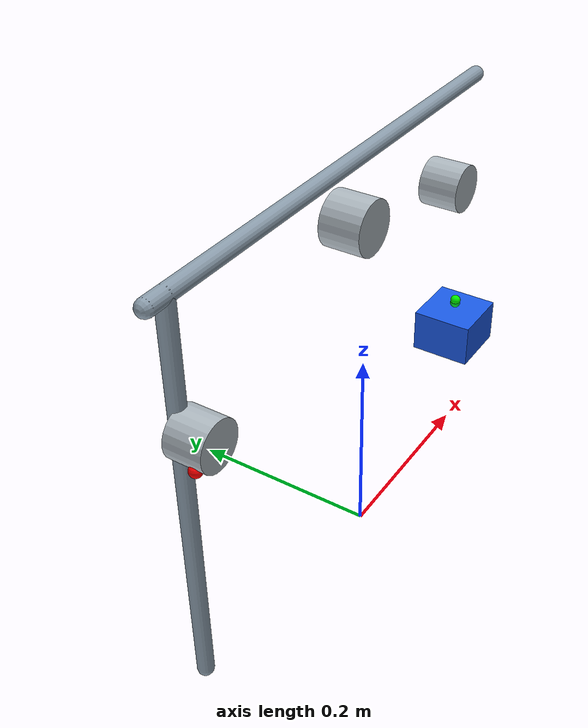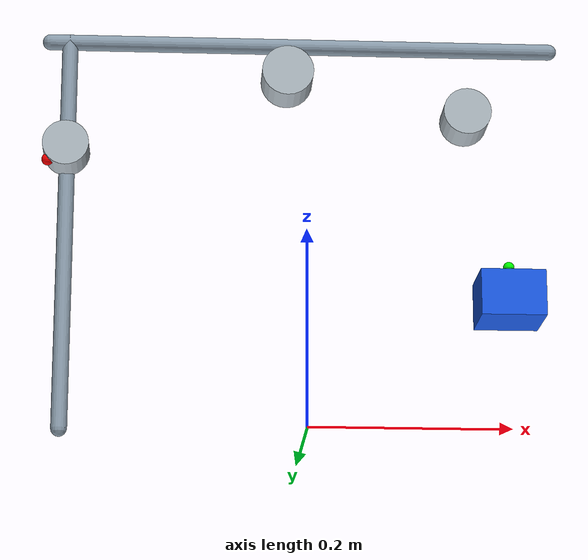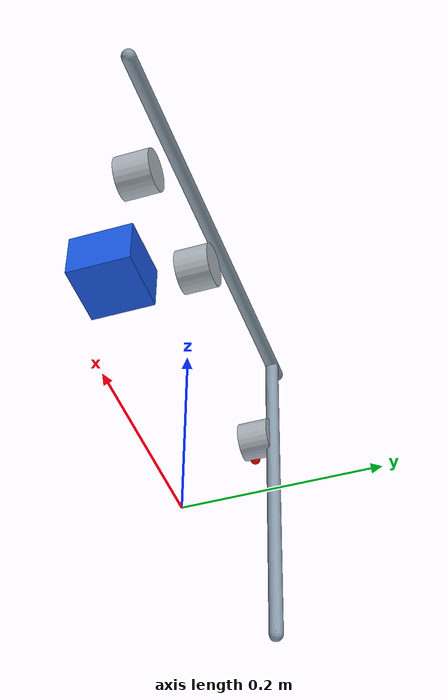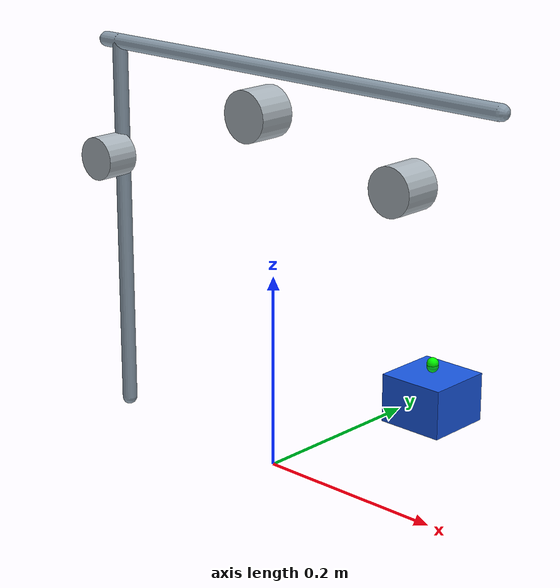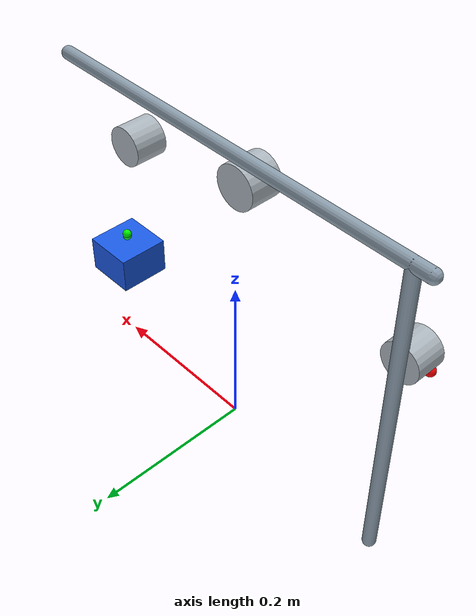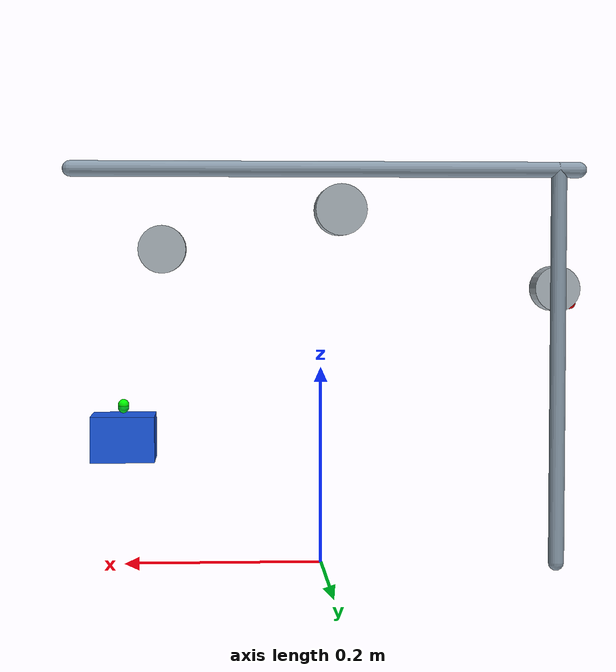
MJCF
<mujoco model="cable_demo_cpp_plugin_dual_pulley_free_payload">
  <compiler autolimits="true" angle="radian" />
  <size nuser_site="1" />
  <option timestep="0.001" gravity="0 0 -9.81" integrator="implicitfast" />

  <extension>
    <plugin plugin="mujoco.cable.unilateral">
      <instance name="dual_pulley_cable">
        <config key="stiffness" value="520.0" />
        <config key="damping" value="3.2" />
        <config key="slack" value="0.0005" />
        <config key="home_length" value="auto_initial" />
        <config key="pretension_offset" value="0.008" />
        <config key="max_tension" value="70.0" />
        <config key="ctrl_mode" value="joint_spool_angle" />
        <config key="spool_radius" value="0.023" />
        <config key="spool_joint" value="winch_hinge" />
        <config key="spool_reserve_length" value="0.025" />
        <config key="spool_reserve_direction" value="positive" />
        <config key="route_mode" value="surface" />
        <config key="route_tendon" value="dual_pulley_load_seed" />
        <config key="wrap_geoms" value="winch_drum_visual left_pulley_visual right_pulley_visual" />
        <config key="site_role_user_index" value="0" />
        <config key="visual_width" value="2" />
      </instance>
    </plugin>
  </extension>

  <default>
    <geom friction="0.8 0.1 0.1" />
  </default>

  <asset>
    <material name="mat_frame" rgba="0.55 0.62 0.68 1" />
    <material name="mat_payload" rgba="0.1 0.35 0.9 1" />
    <material name="mat_pulley" rgba="0.68 0.72 0.75 1" />
    <material name="mat_anchor" rgba="1.0 0.05 0.02 1" />
  </asset>

  <worldbody>
    <light name="key" pos="0 -1 1" dir="0 1 -1" />
    <camera name="overview" pos="0 -0.70 0.20" xyaxes="1 0 0 0 0 1" />

    <geom name="left_post" type="capsule" fromto="-0.24 0.02 0 -0.24 0.02 0.40" size="0.008" material="mat_frame" contype="0" conaffinity="0" />
    <geom name="top_beam" type="capsule" fromto="-0.26 0.02 0.40 0.25 0.02 0.40" size="0.008" material="mat_frame" contype="0" conaffinity="0" />

    <body name="winch_spool" pos="-0.24 0 0.28">
      <joint name="winch_hinge" type="hinge" axis="0 1 0" damping="0.04" armature="0.0004" />
      <geom name="winch_drum_visual" type="cylinder" euler="1.57079632679 0 0" size="0.023 0.018" material="mat_pulley" contype="0" conaffinity="0" />
      <geom name="winch_anchor_visual" type="sphere" pos="-0.0175 -0.008 -0.015" size="0.0055" material="mat_anchor" contype="0" conaffinity="0" />
      <site name="site_spool_anchor" pos="-0.0175 -0.008 -0.015" size="0.006" rgba="1 0 0 1" user="1" />
      <site name="site_spool_wrap_lower" pos="0 0 -0.028" size="0.0001" rgba="1 0.8 0 0" user="2" />
    </body>

    <geom name="left_pulley_visual" type="cylinder" pos="-0.02 0 0.36" euler="1.57079632679 0 0" size="0.026 0.020" material="mat_pulley" contype="0" conaffinity="0" />
    <site name="site_left_pulley_side_upper" pos="-0.02 0 0.391" size="0.0001" rgba="1 0.8 0 0" user="2" />

    <geom name="right_pulley_visual" type="cylinder" pos="0.16 0 0.32" euler="1.57079632679 0 0" size="0.024 0.020" material="mat_pulley" contype="0" conaffinity="0" />
    <site name="site_right_pulley_side_upper_right" pos="0.18036 0 0.34036" size="0.0001" rgba="1 0.8 0 0" user="2" />

    <body name="load" pos="0.20 0 0.13">
      <freejoint name="load_free" />
      <geom name="load_mass" type="box" size="0.032 0.032 0.023" mass="0.25" material="mat_payload" />
      <geom name="load_hook_visual" type="sphere" pos="0 0 0.030" size="0.0055" rgba="0 0.85 0.15 1" contype="0" conaffinity="0" />
      <site name="site_load_hook" pos="0 0 0.033" size="0.0055" rgba="0 1 0 1" user="1" />
    </body>
  </worldbody>

  <tendon>
    <spatial name="dual_pulley_load_seed" limited="false" width="0.000000001" rgba="1.0 0.35 0.05 0.95">
      <site site="site_spool_anchor" />
      <site site="site_spool_wrap_lower" />
      <site site="site_left_pulley_side_upper" />
      <site site="site_right_pulley_side_upper_right" />
      <site site="site_load_hook" />
    </spatial>
  </tendon>

  <actuator>
    <velocity name="winch_motor" joint="winch_hinge" kv="1.5" ctrlrange="-0.25 0.25" />
    <plugin name="dual_pulley_cable_actuator" tendon="dual_pulley_load_seed" gear="0" instance="dual_pulley_cable" />
  </actuator>

  <sensor>
    <plugin name="dual_pulley_cable_state" instance="dual_pulley_cable" />
  </sensor>
</mujoco>
